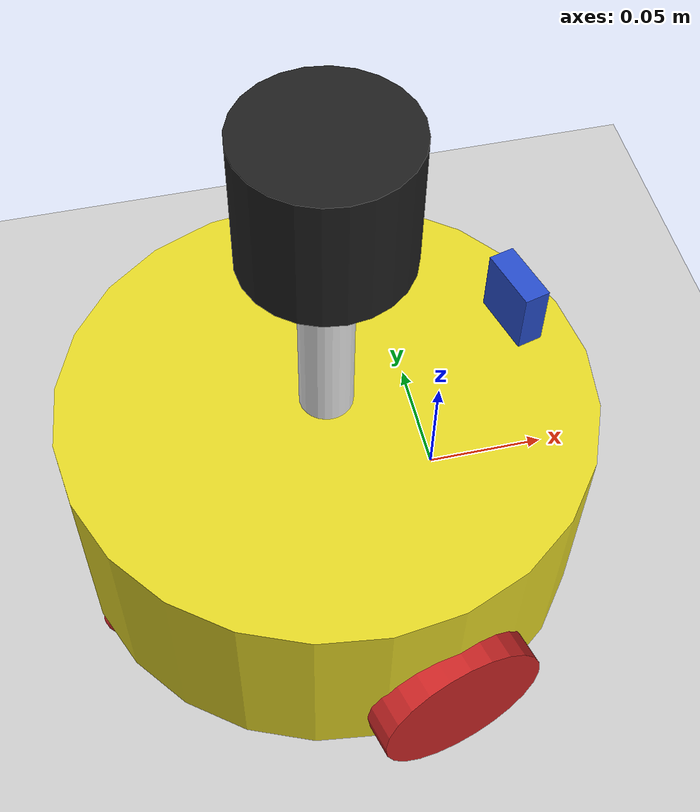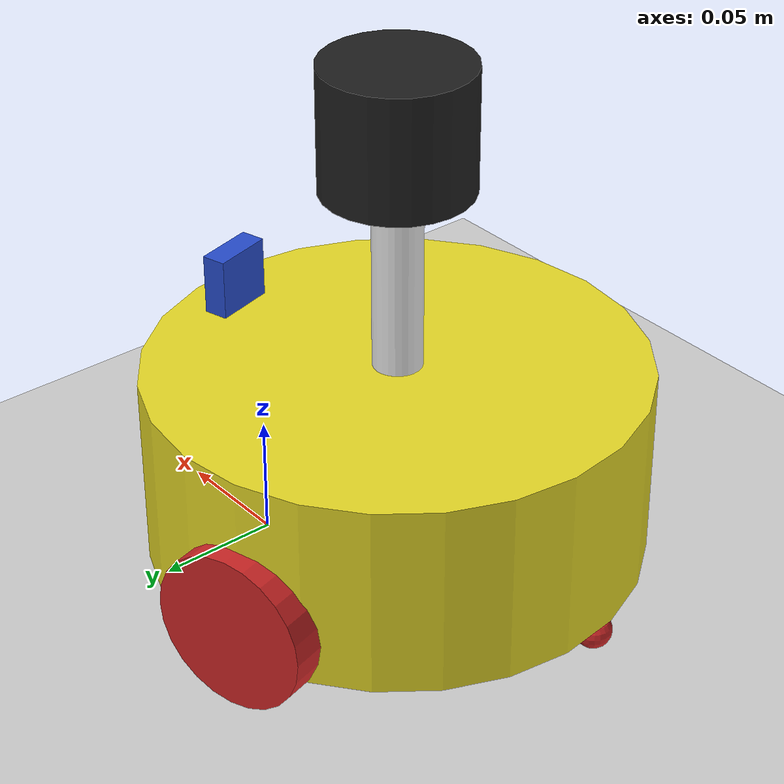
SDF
<sdf version="1.7">
 <world name="default">
  <model name="ground_plane">
   <static>1</static>
   <link name="link">
    <collision name="collision">
     <geometry><plane><normal>0 0 1</normal><size>100 100</size></plane></geometry>
     <surface>
      <contact><collide_bitmask>65535</collide_bitmask></contact>
      <friction><ode><mu>100</mu><mu2>50</mu2></ode></friction>
     </surface>
    </collision>
    <visual name="visual">
     <cast_shadows>0</cast_shadows>
     <geometry><plane><normal>0 0 1</normal><size>100 100</size></plane></geometry>
     <material>
      <script><uri>file://media/materials/scripts/gazebo.material</uri><name>Gazebo/Grey</name></script>
     </material>
    </visual>
   </link>
  </model>
  <model name="pool_robot">
   <link name="base_footprint">
    <inertial>
     <pose>0.00125 0 0.078945 0 -0 0</pose>
     <mass>0.64</mass>
     <inertia>
      <ixx>0.00325137</ixx>
      <ixy>0</ixy>
      <ixz>-2.28438e-05</ixz>
      <iyy>0.00331437</iyy>
      <iyz>0</iyz>
      <izz>0.00261021</izz>
     </inertia>
    </inertial>
    <collision name="base_footprint_fixed_joint_lump__base_link_collision">
     <pose>0 0 0.055 0 -0 0</pose>
     <geometry><cylinder><length>0.08</length><radius>0.1</radius></cylinder></geometry>
    </collision>
    <collision name="base_footprint_fixed_joint_lump__camera_collision_1">
     <pose>0.08 0 0.1075 0 -0 0</pose>
     <geometry><box><size>0.01 0.025 0.025</size></box></geometry>
    </collision>
    <collision name="base_footprint_fixed_joint_lump__imu_collision_2">
     <pose>0 0 0.055 0 -0 0</pose>
     <geometry><box><size>0.01 0.01 0.01</size></box></geometry>
    </collision>
    <collision name="base_footprint_fixed_joint_lump__support_collision_3">
     <pose>0 0 0.095 0 -0 0</pose>
     <geometry><cylinder><length>0.15</length><radius>0.01</radius></cylinder></geometry>
    </collision>
    <collision name="base_footprint_fixed_joint_lump__laser_collision_4">
     <pose>0 0 0.195 0 -0 0</pose>
     <geometry><cylinder><length>0.05</length><radius>0.03</radius></cylinder></geometry>
    </collision>
    <visual name="base_footprint_visual"><geometry><sphere><radius>0.001</radius></sphere></geometry></visual>
    <visual name="base_footprint_fixed_joint_lump__base_link_visual_1">
     <pose>0 0 0.055 0 -0 0</pose>
     <geometry><cylinder><length>0.08</length><radius>0.1</radius></cylinder></geometry>
     <material>
      <script><name>Gazebo/Yellow</name><uri>file://media/materials/scripts/gazebo.material</uri></script>
     </material>
    </visual>
    <visual name="base_footprint_fixed_joint_lump__camera_visual_2">
     <pose>0.08 0 0.1075 0 -0 0</pose>
     <geometry><box><size>0.01 0.025 0.025</size></box></geometry>
     <material>
      <script><name>Gazebo/Blue</name><uri>file://media/materials/scripts/gazebo.material</uri></script>
     </material>
    </visual>
    <visual name="base_footprint_fixed_joint_lump__imu_visual_3">
     <pose>0 0 0.055 0 -0 0</pose>
     <geometry><box><size>0.01 0.01 0.01</size></box></geometry>
     <material>
      <script><name>Gazebo/Red</name><uri>file://media/materials/scripts/gazebo.material</uri></script>
     </material>
    </visual>
    <visual name="base_footprint_fixed_joint_lump__support_visual_4">
     <pose>0 0 0.095 0 -0 0</pose>
     <geometry><cylinder><length>0.15</length><radius>0.01</radius></cylinder></geometry>
     <material>
      <script><name>Gazebo/White</name><uri>file://media/materials/scripts/gazebo.material</uri></script>
     </material>
    </visual>
    <visual name="base_footprint_fixed_joint_lump__laser_visual_5">
     <pose>0 0 0.195 0 -0 0</pose>
     <geometry><cylinder><length>0.05</length><radius>0.03</radius></cylinder></geometry>
     <material>
      <script><name>Gazebo/Black</name><uri>file://media/materials/scripts/gazebo.material</uri></script>
     </material>
    </visual>
    <sensor name="imu_sensor" type="imu">
     <always_on>1</always_on>
     <update_rate>100</update_rate>
     <visualize>1</visualize>
     <topic>__default_topic__</topic>
     <plugin name="imu_plugin" filename="libgazebo_ros_imu_sensor.so">
      <topicName>imu</topicName>
      <bodyName>imu</bodyName>
      <updateRateHZ>100.0</updateRateHZ>
      <gaussianNoise>0.0</gaussianNoise>
      <xyzOffset>0 0 0</xyzOffset>
      <rpyOffset>0 0 0</rpyOffset>
      <frameName>imu</frameName>
      <robotNamespace>/</robotNamespace>
     </plugin>
     <pose>0 0 0.055 0 -0 0</pose>
    </sensor>
    <sensor name="rplidar" type="ray">
     <visualize>1</visualize>
     <update_rate>5.5</update_rate>
     <ray>
      <scan>
       <horizontal>
        <samples>360</samples>
        <resolution>1</resolution>
        <min_angle>0</min_angle>
        <max_angle>360</max_angle>
       </horizontal>
       <vertical><samples>1</samples><min_angle>0</min_angle><max_angle>0</max_angle></vertical>
      </scan>
      <range><min>0.1</min><max>3</max><resolution>0.01</resolution></range>
      <noise><type>gaussian</type><mean>0</mean><stddev>0.01</stddev></noise>
     </ray>
     <plugin name="gazebo_rplidar" filename="libgazebo_ros_laser.so">
      <topicName>/scan</topicName>
      <frameName>laser</frameName>
      <robotNamespace>/</robotNamespace>
     </plugin>
     <pose>0 0 0.195 0 -0 0</pose>
    </sensor>
   </link>
   <joint name="back_wheel2base_link" type="revolute">
    <pose relative_to="base_footprint">-0.0925 0 0.0075 0 -0 0</pose>
    <parent>base_footprint</parent>
    <child>back_wheel</child>
    <axis>
     <xyz>1 1 1</xyz>
     <limit><lower>-1e+16</lower><upper>1e+16</upper></limit>
     <dynamics><spring_reference>0</spring_reference><spring_stiffness>0</spring_stiffness></dynamics>
    </axis>
   </joint>
   <link name="back_wheel">
    <pose relative_to="back_wheel2base_link">0 0 0 0 -0 0</pose>
    <inertial>
     <mass>0.03</mass>
     <inertia>
      <ixx>6.75e-07</ixx>
      <ixy>0</ixy>
      <ixz>0</ixz>
      <iyy>6.75e-07</iyy>
      <iyz>0</iyz>
      <izz>6.75e-07</izz>
     </inertia>
    </inertial>
    <collision name="back_wheel_collision">
     <geometry><sphere><radius>0.0075</radius></sphere></geometry>
    </collision>
    <visual name="back_wheel_visual">
     <geometry><sphere><radius>0.0075</radius></sphere></geometry>
     <material>
      <script><name>Gazebo/Red</name><uri>file://media/materials/scripts/gazebo.material</uri></script>
     </material>
    </visual>
   </link>
   <joint name="front_wheel2base_link" type="revolute">
    <pose relative_to="base_footprint">0.0925 0 0.0075 0 -0 0</pose>
    <parent>base_footprint</parent>
    <child>front_wheel</child>
    <axis>
     <xyz>1 1 1</xyz>
     <limit><lower>-1e+16</lower><upper>1e+16</upper></limit>
     <dynamics><spring_reference>0</spring_reference><spring_stiffness>0</spring_stiffness></dynamics>
    </axis>
   </joint>
   <link name="front_wheel">
    <pose relative_to="front_wheel2base_link">0 0 0 0 -0 0</pose>
    <inertial>
     <mass>0.03</mass>
     <inertia>
      <ixx>6.75e-07</ixx>
      <ixy>0</ixy>
      <ixz>0</ixz>
      <iyy>6.75e-07</iyy>
      <iyz>0</iyz>
      <izz>6.75e-07</izz>
     </inertia>
    </inertial>
    <collision name="front_wheel_collision">
     <geometry><sphere><radius>0.0075</radius></sphere></geometry>
    </collision>
    <visual name="front_wheel_visual">
     <geometry><sphere><radius>0.0075</radius></sphere></geometry>
     <material>
      <script><name>Gazebo/Red</name><uri>file://media/materials/scripts/gazebo.material</uri></script>
     </material>
    </visual>
   </link>
   <joint name="left_wheel2base_link" type="revolute">
    <pose relative_to="base_footprint">0 0.1 0.0325 0 -0 0</pose>
    <parent>base_footprint</parent>
    <child>left_wheel</child>
    <axis>
     <xyz>0 1 0</xyz>
     <limit><lower>-1e+16</lower><upper>1e+16</upper></limit>
     <dynamics><spring_reference>0</spring_reference><spring_stiffness>0</spring_stiffness></dynamics>
    </axis>
   </joint>
   <link name="left_wheel">
    <pose relative_to="left_wheel2base_link">0 0 0 0 -0 0</pose>
    <inertial>
     <mass>0.05</mass>
     <inertia>
      <ixx>1.41406e-05</ixx>
      <ixy>0</ixy>
      <ixz>0</ixz>
      <iyy>1.41406e-05</iyy>
      <iyz>0</iyz>
      <izz>2.64063e-05</izz>
     </inertia>
    </inertial>
    <collision name="left_wheel_collision">
     <pose>0 0 0 1.5708 -0 0</pose>
     <geometry><cylinder><length>0.015</length><radius>0.0325</radius></cylinder></geometry>
    </collision>
    <visual name="left_wheel_visual">
     <pose>0 0 0 1.5708 -0 0</pose>
     <geometry><cylinder><length>0.015</length><radius>0.0325</radius></cylinder></geometry>
     <material>
      <script><name>Gazebo/Red</name><uri>file://media/materials/scripts/gazebo.material</uri></script>
     </material>
    </visual>
   </link>
   <joint name="right_wheel2base_link" type="revolute">
    <pose relative_to="base_footprint">0 -0.1 0.0325 0 -0 0</pose>
    <parent>base_footprint</parent>
    <child>right_wheel</child>
    <axis>
     <xyz>0 1 0</xyz>
     <limit><lower>-1e+16</lower><upper>1e+16</upper></limit>
     <dynamics><spring_reference>0</spring_reference><spring_stiffness>0</spring_stiffness></dynamics>
    </axis>
   </joint>
   <link name="right_wheel">
    <pose relative_to="right_wheel2base_link">0 0 0 0 -0 0</pose>
    <inertial>
     <mass>0.05</mass>
     <inertia>
      <ixx>1.41406e-05</ixx>
      <ixy>0</ixy>
      <ixz>0</ixz>
      <iyy>1.41406e-05</iyy>
      <iyz>0</iyz>
      <izz>2.64063e-05</izz>
     </inertia>
    </inertial>
    <collision name="right_wheel_collision">
     <pose>0 0 0 1.5708 -0 0</pose>
     <geometry><cylinder><length>0.015</length><radius>0.0325</radius></cylinder></geometry>
    </collision>
    <visual name="right_wheel_visual">
     <pose>0 0 0 1.5708 -0 0</pose>
     <geometry><cylinder><length>0.015</length><radius>0.0325</radius></cylinder></geometry>
     <material>
      <script><name>Gazebo/Red</name><uri>file://media/materials/scripts/gazebo.material</uri></script>
     </material>
    </visual>
   </link>
   <plugin name="differential_drive_controller" filename="libgazebo_ros_diff_drive.so">
    <rosDebugLevel>Debug</rosDebugLevel>
    <publishWheelTF>1</publishWheelTF>
    <robotNamespace>/</robotNamespace>
    <publishTf>1</publishTf>
    <publishWheelJointState>1</publishWheelJointState>
    <alwaysOn>1</alwaysOn>
    <updateRate>100.0</updateRate>
    <legacyMode>1</legacyMode>
    <leftJoint>left_wheel2base_link</leftJoint>
    <rightJoint>right_wheel2base_link</rightJoint>
    <wheelSeparation>0.2</wheelSeparation>
    <wheelDiameter>0.065</wheelDiameter>
    <broadcastTF>1</broadcastTF>
    <wheelTorque>30</wheelTorque>
    <wheelAcceleration>1.8</wheelAcceleration>
    <commandTopic>cmd_vel</commandTopic>
    <odometryFrame>odom</odometryFrame>
    <odometryTopic>odom</odometryTopic>
    <robotBaseFrame>base_footprint</robotBaseFrame>
   </plugin>
   <frame name="camera2base_link" attached_to="base_link"><pose>0.08 0 0.0525 0 -0 0</pose></frame>
   <frame name="camera" attached_to="camera2base_link"/>
   <frame name="imu2base_link" attached_to="base_link"/>
   <frame name="imu" attached_to="imu2base_link"/>
   <frame name="laser2support" attached_to="support"><pose>0 0 0.1 0 -0 0</pose></frame>
   <frame name="laser" attached_to="laser2support"/>
   <frame name="support2base_link" attached_to="base_link"><pose>0 0 0.04 0 -0 0</pose></frame>
   <frame name="support" attached_to="support2base_link"/>
   <frame name="base_link2base_footprint" attached_to="base_footprint"><pose>0 0 0.055 0 -0 0</pose></frame>
   <frame name="base_link" attached_to="base_link2base_footprint"/>
   <pose>-0.053456 -0.026141 0 0 -0 0.261817</pose>
  </model>
 </world>
</sdf>
